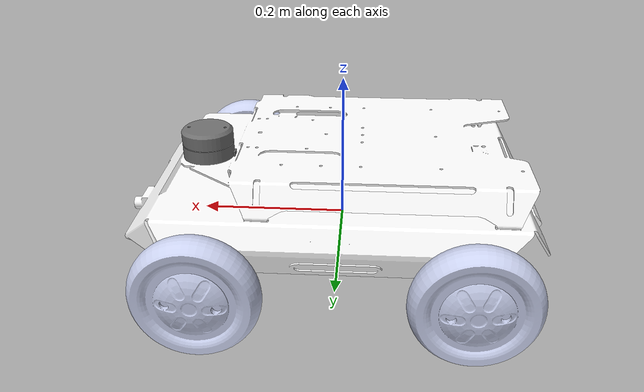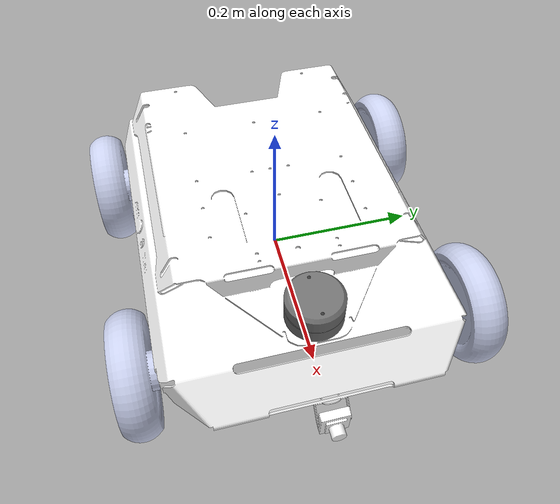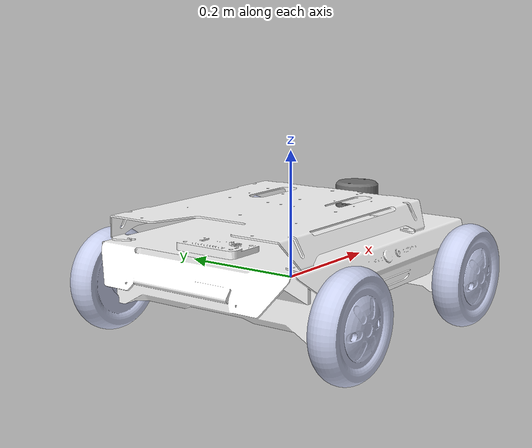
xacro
<?xml version="1.0" encoding="utf-8"?>
<robot xmlns:xacro="http://www.ros.org/wiki/xacro"
  xmlns:sensor="http://playerstage.sourceforge.net/gazebo/xmlschema/#sensor"
  xmlns:controller="http://playerstage.sourceforge.net/gazebo/xmlschema/#controller"
  xmlns:interface="http://playerstage.sourceforge.net/gazebo/xmlschema/#interface"
  name="pacs_01">
  <link
    name="base_link">
    <inertial>
      <origin
        xyz="-0.00219458420835894 3.83870629275841E-05 0.0392068851552257"
        rpy="0 0 0" />
      <mass
        value="13.1522312064695" />
      <inertia
        ixx="0.156504556419624"
        ixy="0.000140265980697997"
        ixz="0.00148292872926079"
        iyy="0.22162736741891"
        iyz="8.44253920075098E-07"
        izz="0.362774724538872" />
    </inertial>
    <visual>
      <origin
        xyz="0 0 0"
        rpy="0 0 0" />
      <geometry>
        <mesh
          filename="package://pacs_01/meshes/base_link.STL" />
      </geometry>
      <material
        name="">
        <color
          rgba="1 1 1 1" />
      </material>
    </visual>
    <collision>
      <origin
        xyz="0 0 0"
        rpy="0 0 0" />
      <geometry>
        <mesh
          filename="package://pacs_01/meshes/base_link.STL" />
      </geometry>
    </collision>
  </link>
<link
    name="lidar_link">
    <inertial>
      <origin
        xyz="0.0002042 6.5402E-11 0.020359"
        rpy="0 0 0" />
      <mass
        value="0.16215" />
      <inertia
        ixx="7.3495E-05"
        ixy="3.734E-13"
        ixz="-1.6953E-07"
        iyy="7.3725E-05"
        iyz="-1.341E-13"
        izz="0.00010201" />
    </inertial>
    <visual>
      <origin
        xyz="0 0 0"
        rpy="0 0 0" />
      <geometry>
        <mesh
          filename="package://pacs_01/meshes/lidar_link.STL" />
      </geometry>
      <material
        name="">
        <color
          rgba="0.43921568627451 0.43921568627451 0.43921568627451 1" />
      </material>
    </visual>
    <collision>
      <origin
        xyz="0 0 0"
        rpy="0 0 0" />
      <geometry>
        <mesh
          filename="package://pacs_01/meshes/lidar_link.STL" />
      </geometry>
    </collision>
  </link>
  <joint
    name="lidar_link_joint"
    type="fixed">
    <origin
      xyz="0.188330058988242 0 0.0844627274970639"
      rpy="0 0 0" />
    <parent
      link="base_link" />
    <child
      link="lidar_link" />
    <axis
      xyz="0 0 0" />
  </joint>
  <link
    name="left_front_wheel_link">
    <inertial>
      <origin
        xyz="2.9792334155232E-09 0.0182050746105527 -1.62390044466942E-09"
        rpy="0 0 0" />
      <mass
        value="0.824539492234795" />
      <inertia
        ixx="0.00139691618870293"
        ixy="-2.40709385661498E-11"
        ixz="7.94951978365798E-08"
        iyy="0.00254783549923954"
        iyz="2.64959677380526E-11"
        izz="0.00139558327985706" />
    </inertial>
    <visual>
      <origin
        xyz="0 0 0"
        rpy="0 0 0" />
      <geometry>
        <mesh
          filename="package://pacs_01/meshes/left_front_wheel_link.STL" />
      </geometry>
      <material
        name="">
        <color
          rgba="0.792156862745098 0.819607843137255 0.933333333333333 1" />
      </material>
    </visual>
    <collision>
      <origin
        xyz="0 0 0"
        rpy="0 0 0" />
      <geometry>
        <mesh
          filename="package://pacs_01/meshes/left_front_wheel_link.STL" />
      </geometry>
    </collision>
  </link>
  <joint
    name="left_front_wheel_link_joint"
    type="continuous">
    <origin
      xyz="0.16727499992998 0.201999999999998 0.00096482289579701"
      rpy="0 0 0" />
    <parent
      link="base_link" />
    <child
      link="left_front_wheel_link" />
    <axis
      xyz="0 1 0" />
  </joint>
  <link
    name="left_behind_wheel_link">
    <inertial>
      <origin
        xyz="-9.49747003264889E-10 0.0182050881806605 -2.51594751976558E-09"
        rpy="0 0 0" />
      <mass
        value="0.824533282072352" />
      <inertia
        ixx="0.00139690520741326"
        ixy="1.18779669056762E-11"
        ixz="-8.35891499671099E-08"
        iyy="0.00254786949454698"
        iyz="2.86085856349142E-11"
        izz="0.00139562797853652" />
    </inertial>
    <visual>
      <origin
        xyz="0 0 0"
        rpy="0 0 0" />
      <geometry>
        <mesh
          filename="package://pacs_01/meshes/left_behind_wheel_link.STL" />
      </geometry>
      <material
        name="">
        <color
          rgba="0.792156862745098 0.819607843137255 0.933333333333333 1" />
      </material>
    </visual>
    <collision>
      <origin
        xyz="0 0 0"
        rpy="0 0 0" />
      <geometry>
        <mesh
          filename="package://pacs_01/meshes/left_behind_wheel_link.STL" />
      </geometry>
    </collision>
  </link>
  <joint
    name="left_behind_wheel_link_joint"
    type="continuous">
    <origin
      xyz="-0.16727500000146 0.202 0.000964823442346829"
      rpy="0 0 0" />
    <parent
      link="base_link" />
    <child
      link="left_behind_wheel_link" />
    <axis
      xyz="0 1 0" />
  </joint>
  <link
    name="right_front_wheel_link">
    <inertial>
      <origin
        xyz="9.35565837023589E-08 -0.0182050963105626 1.95063762503667E-08"
        rpy="0 0 0" />
      <mass
        value="0.824532348335186" />
      <inertia
        ixx="0.00139687678935505"
        ixy="-4.2008163305329E-13"
        ixz="3.09713359425899E-07"
        iyy="0.00254788486215687"
        iyz="2.2229732433845E-11"
        izz="0.00139567211248768" />
    </inertial>
    <visual>
      <origin
        xyz="0 0 0"
        rpy="0 0 0" />
      <geometry>
        <mesh
          filename="package://pacs_01/meshes/right_front_wheel_link.STL" />
      </geometry>
      <material
        name="">
        <color
          rgba="0.792156862745098 0.819607843137255 0.933333333333333 1" />
      </material>
    </visual>
    <collision>
      <origin
        xyz="0 0 0"
        rpy="0 0 0" />
      <geometry>
        <mesh
          filename="package://pacs_01/meshes/right_front_wheel_link.STL" />
      </geometry>
    </collision>
  </link>
  <joint
    name="right_front_wheel_link_joint"
    type="continuous">
    <origin
      xyz="0.167274999739344 -0.201999999999997 0.000964823984624538"
      rpy="0 0 0" />
    <parent
      link="base_link" />
    <child
      link="right_front_wheel_link" />
    <axis
      xyz="0 -1 0" />
  </joint>
  <link
    name="right_behind_wheel_link">
    <inertial>
      <origin
        xyz="-8.01308603798345E-06 -0.0182050839103516 -2.14114836171037E-05"
        rpy="0 0 0" />
      <mass
        value="0.824534297834338" />
      <inertia
        ixx="0.00139691263999912"
        ixy="4.70615268556942E-11"
        ixz="8.41944236930472E-08"
        iyy="0.00254787577648229"
        iyz="-1.20102020385889E-10"
        izz="0.00139562721368499" />
    </inertial>
    <visual>
      <origin
        xyz="0 0 0"
        rpy="0 0 0" />
      <geometry>
        <mesh
          filename="package://pacs_01/meshes/right_behind_wheel_link.STL" />
      </geometry>
      <material
        name="">
        <color
          rgba="0.792156862745098 0.819607843137255 0.933333333333333 1" />
      </material>
    </visual>
    <collision>
      <origin
        xyz="0 0 0"
        rpy="0 0 0" />
      <geometry>
        <mesh
          filename="package://pacs_01/meshes/right_behind_wheel_link.STL" />
      </geometry>
    </collision>
  </link>
  <joint
    name="right_behind_wheel_link_joint"
    type="continuous">
    <origin
      xyz="-0.167266982821384 -0.201999999999996 0.000986224173708944"
      rpy="0 0 0" />
    <parent
      link="base_link" />
    <child
      link="right_behind_wheel_link" />
    <axis
      xyz="0 -1 0" />
  </joint>

<!--lidar_link-->

        <gazebo reference="lidar_link">

            <sensor type="ray" name="rplidar">

                <pose>0 0 0 0 0 0</pose>

                <visualize>false</visualize>

                <update_rate>5.5</update_rate>

                <ray>

                    <scan>

                      <horizontal>

                        <samples>360</samples>

                        <resolution>1</resolution>

                        <min_angle>-3</min_angle>

                        <max_angle>3</max_angle>

                      </horizontal>

                    </scan>

                    <range>

                      <min>0.10</min>

                      <max>6.0</max>

                      <resolution>0.01</resolution>

                    </range>

                    <noise>

                      <type>gaussian</type>

                      <mean>0.0</mean>

                      <stddev>0.01</stddev>

                    </noise>

                </ray>

                <plugin name="gazebo_rplidar" filename="libgazebo_ros_laser.so">

                    <topicName>/scan</topicName>

                    <frameName>lidar_link</frameName>

                </plugin>

            </sensor>

        </gazebo>

<!-- Drive controller -->

<gazebo>

  <plugin name="skid_steer_drive_controller" filename="libgazebo_ros_skid_steer_drive.so">

    <updateRate>100.0</updateRate>

    <robotNamespace></robotNamespace>

    <leftFrontJoint>left_front_wheel_link_joint</leftFrontJoint>

    <rightFrontJoint>right_front_wheel_link_joint</rightFrontJoint>

    <leftRearJoint>left_behind_wheel_link_joint</leftRearJoint>

    <rightRearJoint>right_behind_wheel_link_joint</rightRearJoint>

    <wheelSeparation>0.445</wheelSeparation>

    <wheelDiameter>0.162</wheelDiameter>

    <commandTopic>cmd_vel</commandTopic>

    <odometryTopic>odom</odometryTopic>

    <robotBaseFrame>base_link</robotBaseFrame>

    <odometryFrame>odom</odometryFrame>

    <torque>1000</torque>

    <topicName>cmd_vel</topicName>

    <broadcastTF>1</broadcastTF>

  </plugin>

</gazebo>

<!-- ros_control plugin -->

  <gazebo>

    <plugin name="gazebo_ros_control" filename="libgazebo_ros_control.so">

      <robotNamespace>/run_robot</robotNamespace>

      <legacyModeNS>true</legacyModeNS>

    </plugin>

  </gazebo>

<!--friction-->

 <gazebo reference="left_front_wheel_link">

		    <mu1>10000</mu1>

		    <mu2>10000</mu2>

		    <kp>10000000</kp>

		    <kd>1</kd>

	</gazebo>

  <gazebo reference="left_behind_wheel_link">

		    <mu1>10000</mu1>

		    <mu2>10000</mu2>

		    <kp>10000000</kp>

		    <kd>1</kd>

	</gazebo>

  <gazebo reference="right_front_wheel_link">

		    <mu1>10000</mu1>

		    <mu2>10000</mu2>

		    <kp>10000000</kp>

		    <kd>1</kd>

	</gazebo>

  <gazebo reference="right_behind_wheel_link">

		    <mu1>10000</mu1>

		    <mu2>10000</mu2>

		    <kp>10000000</kp>

		    <kd>1</kd>

	</gazebo>

</robot>
